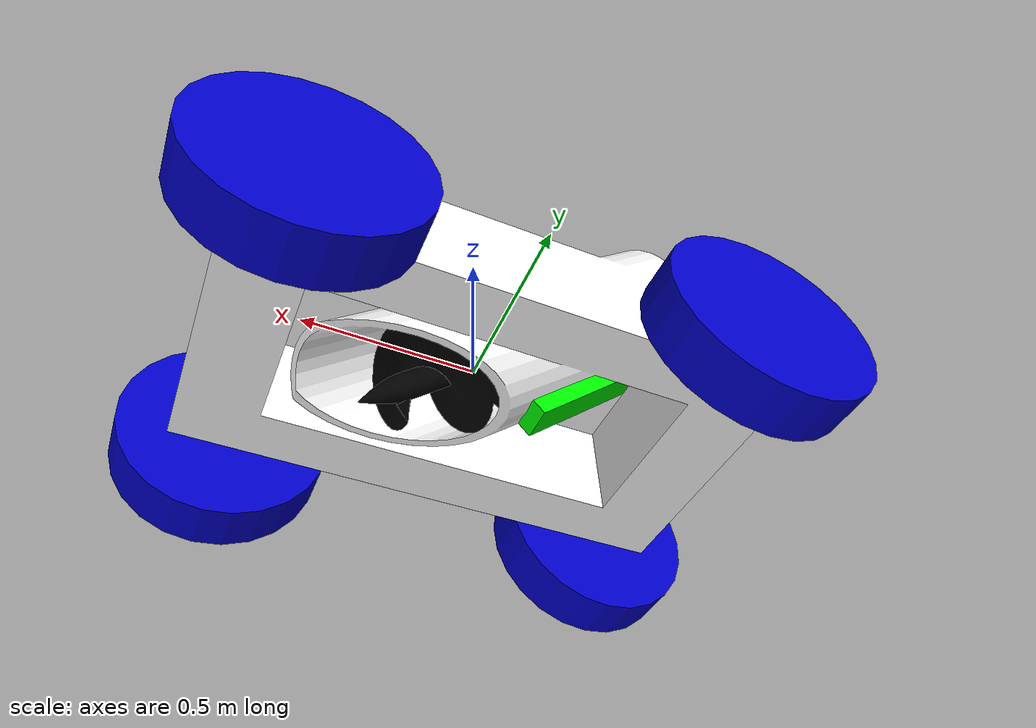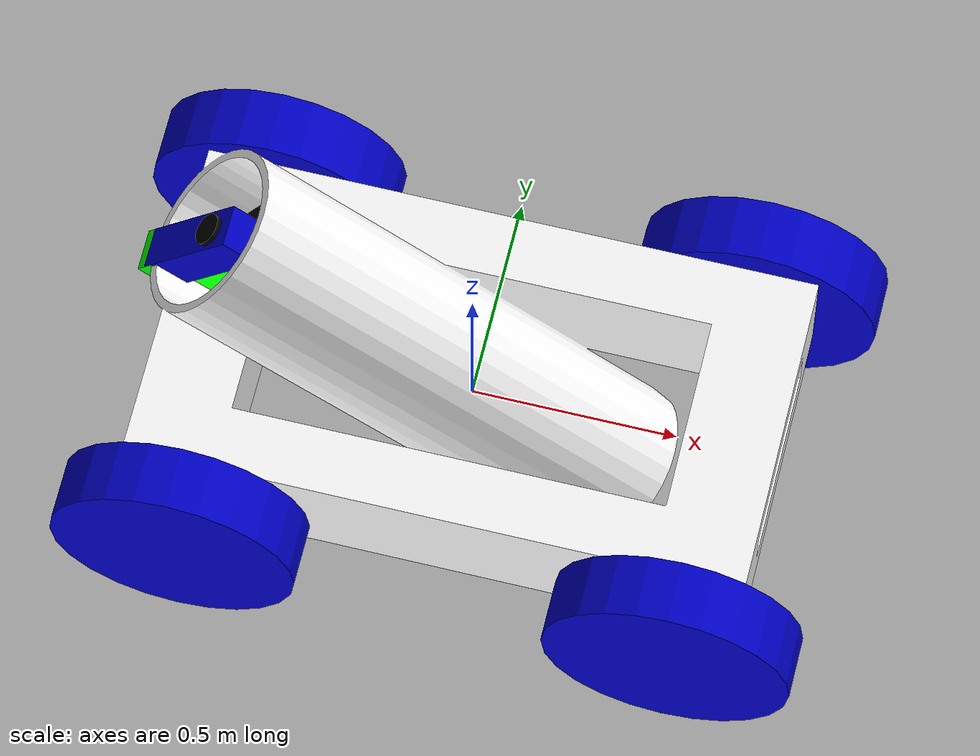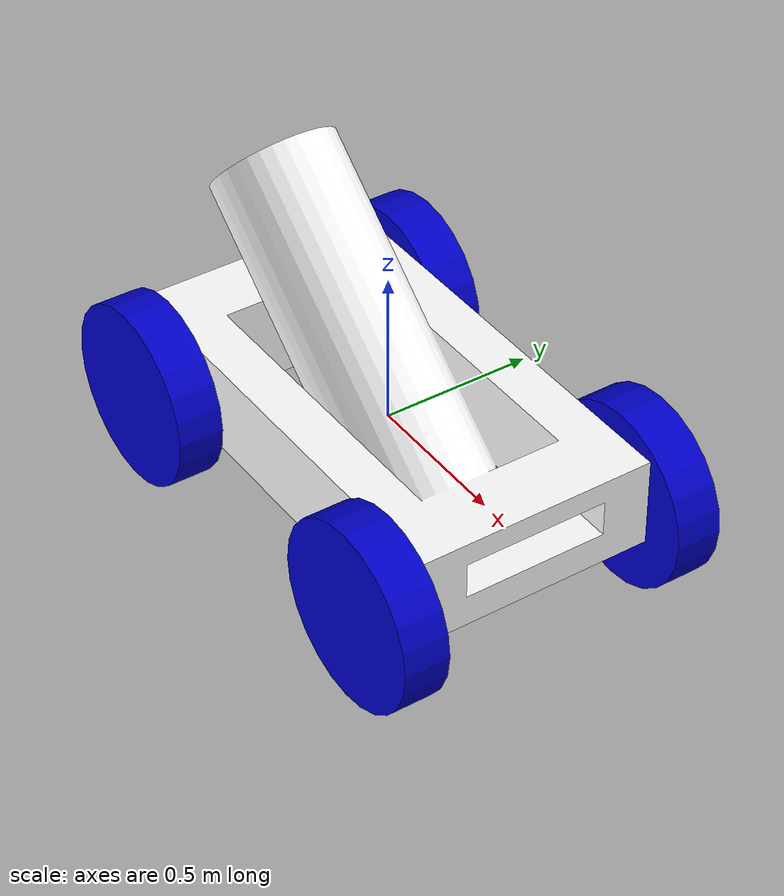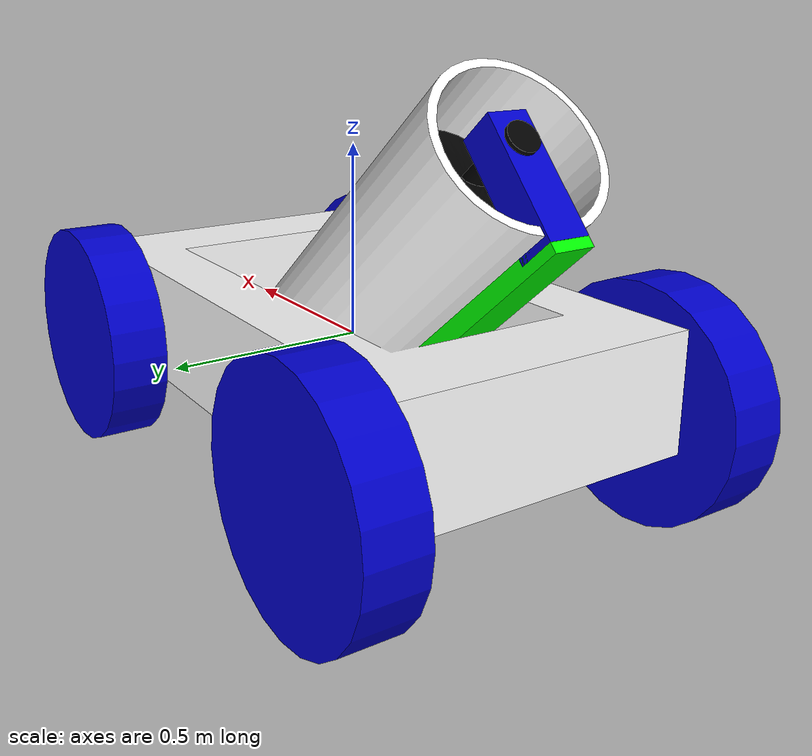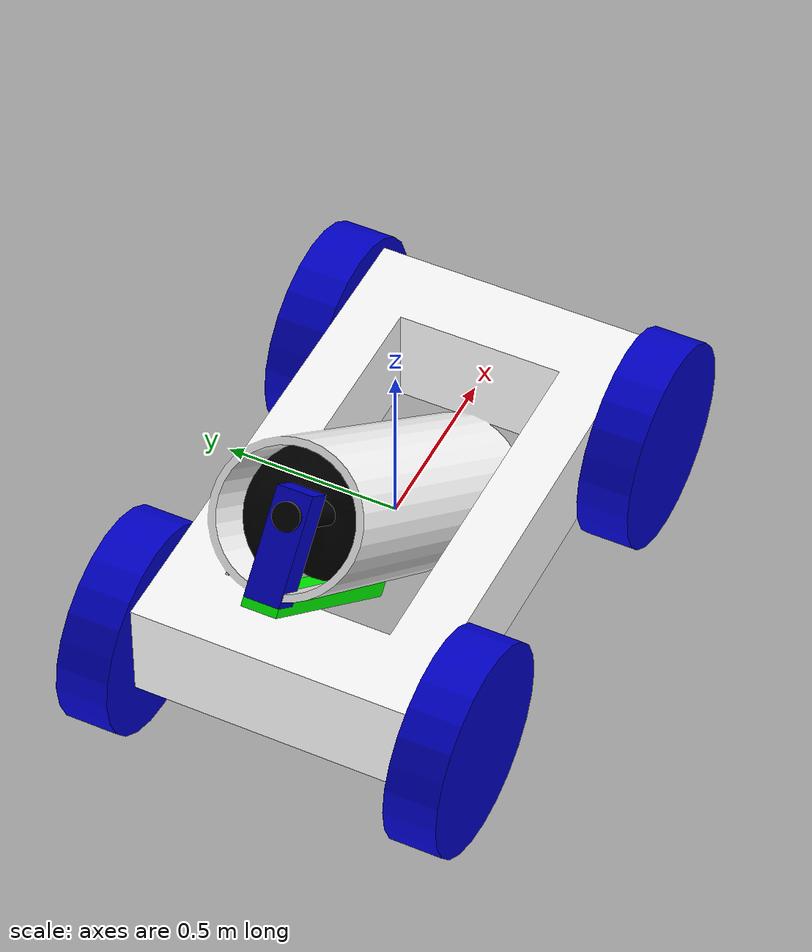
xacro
<?xml version="1.0"?>
<!-- Credit to https://github.com/ZBO-R8io/Roberto/blob/main/backups/lunarbot/urdf/lunarbot2.xacro -->
<!-- For the robot's urdf model -->
<!--Name of Robot-->
<robot name="Roberto_MkII" xmlns:xacro="http://www.ros.org/wiki/xacro">

  <!--Materials-->
  <material name="blue">
    <color rgba="0 0 0.8 1"/>
  </material>

  <material name="white">
    <color rgba="1 1 1 1"/>
  </material>

  <material name="black">
    <color rgba="0 0 0 1"/>
  </material>

  <material name="green">
    <color rgba="0 1 0 1"/>
  </material>

  <!--Default Inertial-->
  <xacro:macro name="default_inertial" params="mass">
    <inertial>
      <mass value="${mass}"/>
      <inertia ixx="1.0" ixy="0" ixz="0" iyy="1.0" iyz="0" izz="1.0"/>
    </inertial>
  </xacro:macro>

  <!--Body (base_link) Macros-->
  <xacro:property name="body_size" value="1.5 0.8 0.3"/>
  <xacro:property name="body_mass" value="10"/>
  <xacro:property name="body_color" value="white"/>
  <xacro:macro name="body" params="name">
    <link name="${name}_link">
      <visual>
        <geometry>
          <mesh filename="package://new_robot_urdf/meshes/base_link2.stl"/>
        </geometry>
        <material name="${body_color}"/>
     </visual>
     <collision>
       <geometry>
         <box size="${body_size}"/>
       </geometry>
     </collision>
     <xacro:default_inertial mass="${body_mass}"/>
    </link>

    <gazebo>
      <material>Gazebo/Grey</material>
    </gazebo>
  </xacro:macro>
  <xacro:body name="base"/>

  <!--Wheel Macros-->
  <xacro:property name="wheel_len" value="0.15" />
  <xacro:property name="wheel_rad" value="0.3" />
  <xacro:property name="wheel_origin" value="1.57075 0 0" />
  <xacro:property name="wheel_color" value="blue"/>
  <xacro:property name="wheel_mass" value="5"/>
  <xacro:property name="wheel_joint_type" value="continuous"/>
  <xacro:property name="wheel_joint_axis" value="0 1 0"/>
  <xacro:macro name="wheel" params="suffix reflect_x reflect_y reflect_z">
    <link name="link_${suffix}">
      <visual>
        <geometry>
          <cylinder length="${wheel_len}" radius="${wheel_rad}"/>
        </geometry>
        <origin rpy="${wheel_origin}"/>
        <material name="${wheel_color}"/>
      </visual>
      <collision>
        <geometry>
          <cylinder length="${wheel_len}" radius="${wheel_rad}"/>
        </geometry>
        <origin rpy="${wheel_origin}"/>
      </collision>
      <xacro:default_inertial mass="${wheel_mass}"/>
    </link>

    <joint name="joint_${suffix}" type="${wheel_joint_type}">
      <parent link="base_link"/>
      <child link="link_${suffix}"/>
      <axis xyz="${wheel_joint_axis}"/>
      <origin xyz="${reflect_x * 0.6} ${reflect_y * 0.475} ${reflect_z * 0.075}"/>
    </joint>

    <transmission name="joint_${suffix}_wheel_trans">
      <type>transmission_interface/SimpleTransmission</type>
      <actuator name="joint_${suffix}_wheel_motor">
        <hardwareInterface>hardware_interface/VelocityJointInterface
        </hardwareInterface>
        <mechanicalReduction>1</mechanicalReduction>
      </actuator>
      <joint name="joint_${suffix}">
        <hardwareInterface>hardware_interface/VelocityJointInterface
        </hardwareInterface>
      </joint>
    </transmission>

    <gazebo reference="link_${suffix}">
      <mu1 value="200.0"/>
      <mu2 value="100.0"/>
      <kp value="10000000.0"/>
      <kd value="1.0"/>
      <material>Gazebo/Blue</material>
    </gazebo>
  </xacro:macro>

  <!--wheel/joint_0-->
  <xacro:wheel suffix="0" reflect_x="1" reflect_y="1" reflect_z="-1" />
  <!--wheel/joint_1-->
  <xacro:wheel suffix="1" reflect_x="1" reflect_y="-1" reflect_z="-1" />
  <!--wheel/joint_2-->
  <xacro:wheel suffix="2" reflect_x="-1" reflect_y="1" reflect_z="-1" />
  <!--wheel/joint_3-->
  <xacro:wheel suffix="3" reflect_x="-1" reflect_y="-1" reflect_z="-1" />

  <!--Link_4 Macros-->
  <xacro:property name="link_4_size" value="0.05 0.1 0.8"/>
  <xacro:property name="link_4_origin" value="0 0 0.3"/>
  <xacro:property name="link_4_color" value="green"/>
  <xacro:property name="link_4_mass" value="3"/>
  <xacro:property name="joint_4_type" value="fixed"/>
  <xacro:property name="joint_4_origin_rpy" value="0 -0.85 0"/>
  <xacro:property name="joint_4_origin_xyz" value="-0.25 0 -0.05"/>
  <xacro:macro name="link_4" params="num">
    <link name="link_${num}">
      <visual>
        <geometry>
          <box size="${link_4_size}"/>
        </geometry>
        <origin xyz="${link_4_origin}"/>
        <material name="${link_4_color}"/>
      </visual>
      <collision>
        <geometry>
          <box size="${link_4_size}"/>
        </geometry>
        <origin xyz="${link_4_origin}"/>
      </collision>
      <xacro:default_inertial mass="${link_4_mass}"/>
    </link>

    <joint name="joint_${num}" type="${joint_4_type}">
      <parent link="base_link"/>
      <child link="link_${num}"/>
      <origin rpy="${joint_4_origin_rpy}" xyz="${joint_4_origin_xyz}"/>
    </joint>

    <gazebo reference="link_${num}">
      <material>Gazebo/Yellow</material>
    </gazebo>
  </xacro:macro>
  <xacro:link_4 num="4"/>

  <!--Link_5 Macros-->
  <xacro:property name="link_5_size" value="0.1 0.1 0.3"/>
  <xacro:property name="link_5_origin_rpy" value="0 1.575 0"/>
  <xacro:property name="link_5_origin_xyz" value="0.15 0 0"/>
  <xacro:property name="link_5_color" value="blue"/>
  <xacro:property name="link_5_mass" value="2"/>
  <xacro:property name="joint_5_type" value="prismatic"/>
  <xacro:property name="joint_5_axis" value="0 0 1"/>
  <xacro:property name="joint_5_effort" value="1000"/>
  <xacro:property name="joint_5_upper_limit" value="0"/>
  <xacro:property name="joint_5_lower_limit" value="-0.55"/>
  <xacro:property name="joint_5_velocity" value="0.5"/>
  <xacro:property name="joint_5_origin" value="0 0 0.65"/>
  <xacro:macro name="link_5" params="num">
    <link name="link_${num}">
      <visual>
        <geometry>
          <box size="${link_5_size}"/>
        </geometry>
        <origin rpy="${link_5_origin_rpy}" xyz="${link_5_origin_xyz}"/>
        <material name="${link_5_color}"/>
      </visual>
      <collision>
        <geometry>
          <box size="${link_5_size}"/>
        </geometry>
        <origin rpy="${link_5_origin_rpy}" xyz="${link_5_origin_xyz}"/>
      </collision>
      <xacro:default_inertial mass="${link_5_mass}"/>
    </link>

    <joint name="joint_${num}" type="prismatic">
      <parent link="link_4"/>
      <child link="link_${num}"/>
      <axis xyz="${joint_5_axis}"/>
      <limit effort="${joint_5_effort}"
                upper="${joint_5_upper_limit}"
                lower="${joint_5_lower_limit}"
                velocity="${joint_5_velocity}"/>
      <origin xyz="${joint_5_origin}"/>
    </joint>

    <transmission name="joint_${num}_trans">
      <type>transmission_interface/SimpleTransmission</type>
      <actuator name="joint_${num}_motor">
        <hardwareInterface>hardware_interface/PositionJointInterface
        </hardwareInterface>
        <mechanicalReduction>1</mechanicalReduction>
      </actuator>
      <joint name="joint_${num}">
        <hardwareInterface>hardware_interface/PositionJointInterface
        </hardwareInterface>
      </joint>
    </transmission>

    <gazebo reference="link_${num}">
      <mu1 value="200.0"/>
      <mu2 value="100.0"/>
      <kp value="10000000.0"/>
      <kd value="1.0"/>
      <material>Gazebo/Blue</material>
    </gazebo>
  </xacro:macro>
  <xacro:link_5 num="5"/>

  <!--Auger Macros-->
  <xacro:property name="auger_link_origin" value="0 0 -1.2"/>
  <xacro:property name="auger_color" value="black"/>
  <xacro:property name="auger_collision_len" value="0.4"/>
  <xacro:property name="auger_collision_rad" value="0.18"/>
  <xacro:property name="auger_collision_origin" value="0 0 -0.4"/>
  <xacro:property name="auger_mass" value="5"/>
  <xacro:property name="auger_joint_type" value="continuous"/>
  <xacro:property name="auger_joint_axis" value="0 0 1"/>
  <xacro:property name="auger_joint_origin" value="0.23 0 0"/>
  <xacro:macro name="drill" params="type">
    <link name="${type}_link">
      <visual>
        <origin xyz="${auger_link_origin}"/>
        <geometry>
           <mesh filename="package://new_robot_urdf/meshes/auger.stl"/>
        </geometry>
        <material name="${auger_color}"/>
      </visual>
      <collision>
        <geometry>
          <cylinder length="${auger_collision_len}"
                           radius="${auger_collision_rad}"/>
        </geometry>
        <origin xyz="${auger_collision_origin}"/>
      </collision>
      <xacro:default_inertial mass="${auger_mass}"/>
    </link>

    <joint name="${type}_joint" type="${auger_joint_type}">
      <parent link="link_5"/>
      <child link="${type}_link"/>
      <axis xyz="${auger_joint_axis}"/>
      <origin xyz="${auger_joint_origin}"/>
    </joint>

    <transmission name="${type}_joint_trans">
      <type>transmission_interface/SimpleTransmission</type>
      <actuator name="${type}_joint_motor">
        <hardwareInterface>hardware_interface/VelocityJointInterface
        </hardwareInterface>
        <mechanicalReduction>1</mechanicalReduction>
      </actuator>
      <joint name="${type}_joint">
        <hardwareInterface>hardware_interface/VelocityJointInterface
        </hardwareInterface>
      </joint>
    </transmission>

    <gazebo reference="${type}_link">
      <mu1 value="200.0"/>
      <mu2 value="100.0"/>
      <kp value="10000000.0"/>
      <kd value="1.0"/>
      <material>Gazebo/Black</material>
    </gazebo>
  </xacro:macro>
  <xacro:drill type="auger"/>

  <!--Gazebo plugin for ros_control-->
  <gazebo>
	  <plugin name="gazebo_ros_control" filename="libgazebo_ros_control.so"/>
	  <robotNamespace>/new_robot_urdf</robotNamespace>
	</gazebo>
</robot>
